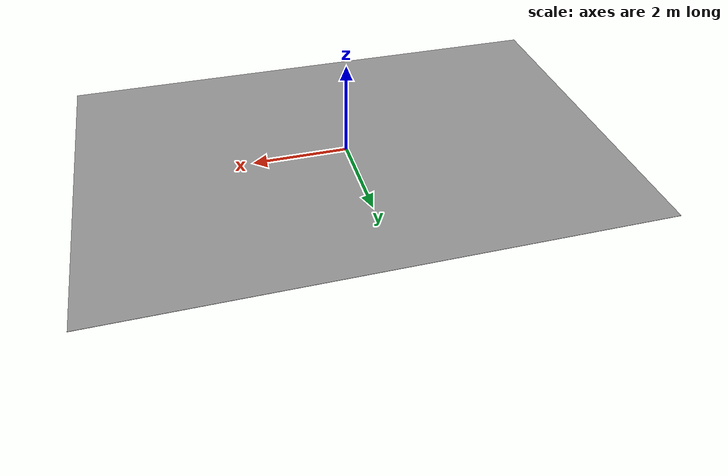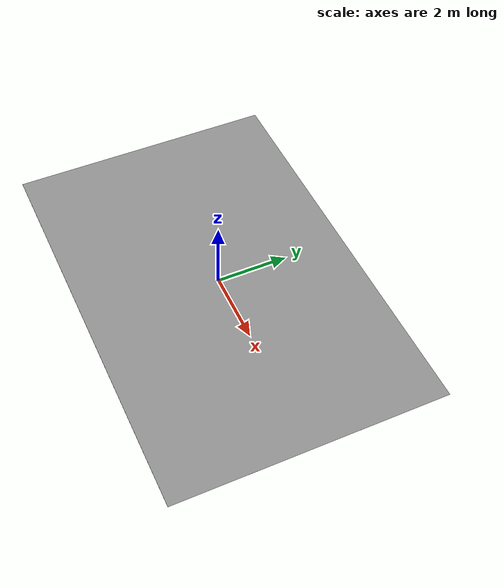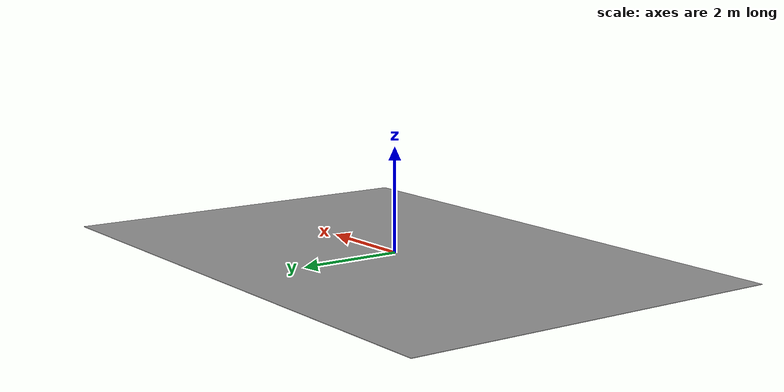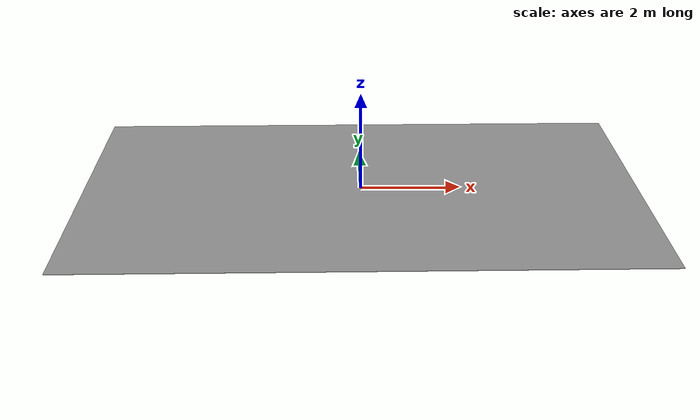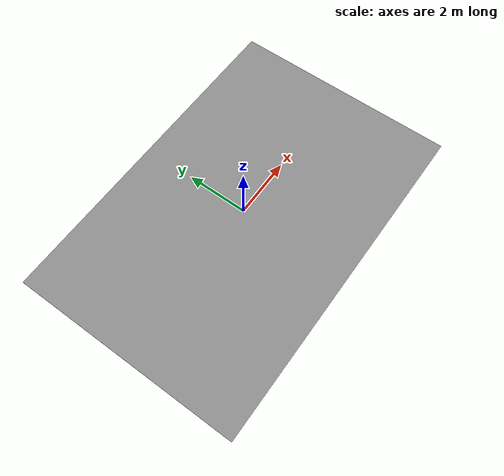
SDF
<?xml version='1.0'?>
<sdf version='1.6'>
  <model name='lab_floor'>
    <link name='link_0'>
      <pose frame=''>0 0 0 0 -0 0</pose>
      <visual name='visual'>
        <geometry>
          <box>
            <size>11.2 7.45 0.01</size>
          </box>
        </geometry>
        <material>
          <lighting>1</lighting>
          <script>
            <uri>file://media/materials/scripts/gazebo.material</uri>
            <name>Gazebo/Grey</name>
          </script>
          <shader type='vertex'>
            <normal_map>__default__</normal_map>
          </shader>
          <ambient>0.3 0.3 0.3 1</ambient>
          <diffuse>0.7 0.7 0.7 1</diffuse>
          <specular>0.01 0.01 0.01 1</specular>
          <emissive>0 0 0 1</emissive>
        </material>
        <cast_shadows>1</cast_shadows>
      </visual>
      <collision name='collision'>
        <geometry>
          <box>
            <size>11.2 7.45 0.001</size>
          </box>
        </geometry>
      </collision>
    </link>
    <static>1</static>
    <allow_auto_disable>1</allow_auto_disable>
  </model>
</sdf>
